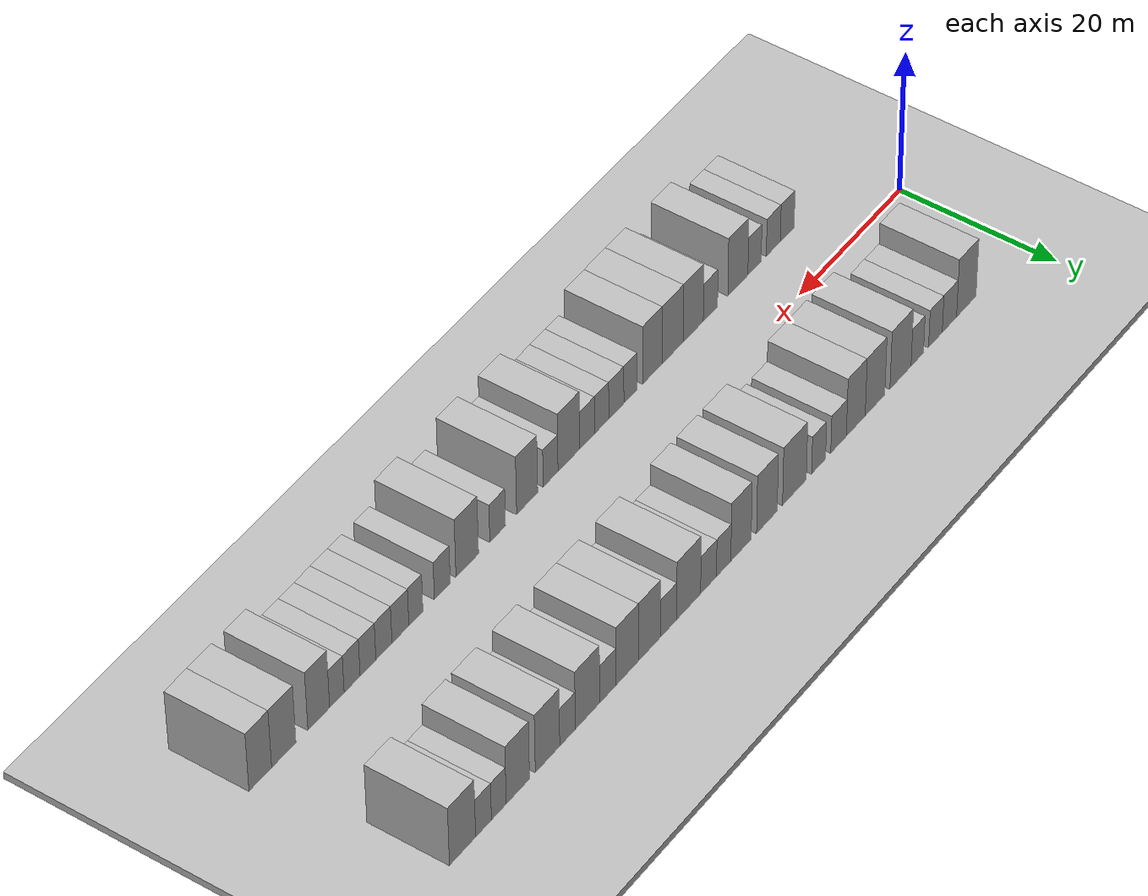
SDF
<sdf version="1.6">
 <world name="default">
  <include><name>ground_plane_1</name><uri>model://HANNAS_ground_plane</uri></include>
  <include>
   <name>ground_plane_2</name>
   <uri>model://HANNAS_ground_plane</uri>
   <pose>100 0 0  0 0 0</pose>
  </include>
  <model name="building_1">
   <static>1</static>
   <pose>11.9520 11.0000 0 0.000000 0.000000 1.570796</pose>
   <link name="link">
    <pose>0 0 4.50 0 0 0</pose>
    <collision name="collision"><geometry><box><size>10.0000 3.9040 9.0000</size></box></geometry></collision>
    <visual name="visual">
     <cast_shadows>0</cast_shadows>
     <geometry><box><size>10.0000 3.9040 9.0000</size></box></geometry>
     <material>
      <script>
       <uri>model://HANNAS_wall/materials/scripts</uri>
       <uri>model://HANNAS_wall/materials/textures</uri>
       <name>vrc/HANNAS_wall</name>
      </script>
     </material>
    </visual>
   </link>
  </model>
  <model name="building_2">
   <static>1</static>
   <pose>15.3373 11.0000 0 0.000000 0.000000 1.570796</pose>
   <link name="link">
    <pose>0 0 3.00 0 0 0</pose>
    <collision name="collision"><geometry><box><size>10.0000 2.8666 6.0000</size></box></geometry></collision>
    <visual name="visual">
     <cast_shadows>0</cast_shadows>
     <geometry><box><size>10.0000 2.8666 6.0000</size></box></geometry>
     <material>
      <script>
       <uri>model://HANNAS_wall/materials/scripts</uri>
       <uri>model://HANNAS_wall/materials/textures</uri>
       <name>vrc/HANNAS_wall</name>
      </script>
     </material>
    </visual>
   </link>
  </model>
  <model name="building_3">
   <static>1</static>
   <pose>18.1321 11.0000 0 0.000000 0.000000 1.570796</pose>
   <link name="link">
    <pose>0 0 3.00 0 0 0</pose>
    <collision name="collision"><geometry><box><size>10.0000 2.7230 6.0000</size></box></geometry></collision>
    <visual name="visual">
     <cast_shadows>0</cast_shadows>
     <geometry><box><size>10.0000 2.7230 6.0000</size></box></geometry>
     <material>
      <script>
       <uri>model://HANNAS_wall/materials/scripts</uri>
       <uri>model://HANNAS_wall/materials/textures</uri>
       <name>vrc/HANNAS_wall</name>
      </script>
     </material>
    </visual>
   </link>
  </model>
  <model name="building_4">
   <static>1</static>
   <pose>21.7241 11.0000 0 0.000000 0.000000 1.570796</pose>
   <link name="link">
    <pose>0 0 3.00 0 0 0</pose>
    <collision name="collision"><geometry><box><size>10.0000 2.4609 6.0000</size></box></geometry></collision>
    <visual name="visual">
     <cast_shadows>0</cast_shadows>
     <geometry><box><size>10.0000 2.4609 6.0000</size></box></geometry>
     <material>
      <script>
       <uri>model://HANNAS_wall/materials/scripts</uri>
       <uri>model://HANNAS_wall/materials/textures</uri>
       <name>vrc/HANNAS_wall</name>
      </script>
     </material>
    </visual>
   </link>
  </model>
  <model name="building_5">
   <static>1</static>
   <pose>25.0302 11.0000 0 0.000000 0.000000 1.570796</pose>
   <link name="link">
    <pose>0 0 4.50 0 0 0</pose>
    <collision name="collision"><geometry><box><size>10.0000 4.1513 9.0000</size></box></geometry></collision>
    <visual name="visual">
     <cast_shadows>0</cast_shadows>
     <geometry><box><size>10.0000 4.1513 9.0000</size></box></geometry>
     <material>
      <script>
       <uri>model://HANNAS_wall/materials/scripts</uri>
       <uri>model://HANNAS_wall/materials/textures</uri>
       <name>vrc/HANNAS_wall</name>
      </script>
     </material>
    </visual>
   </link>
  </model>
  <model name="building_6">
   <static>1</static>
   <pose>30.0133 11.0000 0 0.000000 0.000000 1.570796</pose>
   <link name="link">
    <pose>0 0 4.50 0 0 0</pose>
    <collision name="collision"><geometry><box><size>10.0000 3.8149 9.0000</size></box></geometry></collision>
    <visual name="visual">
     <cast_shadows>0</cast_shadows>
     <geometry><box><size>10.0000 3.8149 9.0000</size></box></geometry>
     <material>
      <script>
       <uri>model://HANNAS_wall/materials/scripts</uri>
       <uri>model://HANNAS_wall/materials/textures</uri>
       <name>vrc/HANNAS_wall</name>
      </script>
     </material>
    </visual>
   </link>
  </model>
  <model name="building_7">
   <static>1</static>
   <pose>33.7494 11.0000 0 0.000000 0.000000 1.570796</pose>
   <link name="link">
    <pose>0 0 4.50 0 0 0</pose>
    <collision name="collision"><geometry><box><size>10.0000 3.6573 9.0000</size></box></geometry></collision>
    <visual name="visual">
     <cast_shadows>0</cast_shadows>
     <geometry><box><size>10.0000 3.6573 9.0000</size></box></geometry>
     <material>
      <script>
       <uri>model://HANNAS_wall/materials/scripts</uri>
       <uri>model://HANNAS_wall/materials/textures</uri>
       <name>vrc/HANNAS_wall</name>
      </script>
     </material>
    </visual>
   </link>
  </model>
  <model name="building_8">
   <static>1</static>
   <pose>37.0728 11.0000 0 0.000000 0.000000 1.570796</pose>
   <link name="link">
    <pose>0 0 3.00 0 0 0</pose>
    <collision name="collision"><geometry><box><size>10.0000 2.9895 6.0000</size></box></geometry></collision>
    <visual name="visual">
     <cast_shadows>0</cast_shadows>
     <geometry><box><size>10.0000 2.9895 6.0000</size></box></geometry>
     <material>
      <script>
       <uri>model://HANNAS_wall/materials/scripts</uri>
       <uri>model://HANNAS_wall/materials/textures</uri>
       <name>vrc/HANNAS_wall</name>
      </script>
     </material>
    </visual>
   </link>
  </model>
  <model name="building_9">
   <static>1</static>
   <pose>40.8985 11.0000 0 0.000000 0.000000 1.570796</pose>
   <link name="link">
    <pose>0 0 3.00 0 0 0</pose>
    <collision name="collision"><geometry><box><size>10.0000 2.6618 6.0000</size></box></geometry></collision>
    <visual name="visual">
     <cast_shadows>0</cast_shadows>
     <geometry><box><size>10.0000 2.6618 6.0000</size></box></geometry>
     <material>
      <script>
       <uri>model://HANNAS_wall/materials/scripts</uri>
       <uri>model://HANNAS_wall/materials/textures</uri>
       <name>vrc/HANNAS_wall</name>
      </script>
     </material>
    </visual>
   </link>
  </model>
  <model name="building_10">
   <static>1</static>
   <pose>45.4776 11.0000 0 0.000000 0.000000 1.570796</pose>
   <link name="link">
    <pose>0 0 4.50 0 0 0</pose>
    <collision name="collision"><geometry><box><size>10.0000 4.4963 9.0000</size></box></geometry></collision>
    <visual name="visual">
     <cast_shadows>0</cast_shadows>
     <geometry><box><size>10.0000 4.4963 9.0000</size></box></geometry>
     <material>
      <script>
       <uri>model://HANNAS_wall/materials/scripts</uri>
       <uri>model://HANNAS_wall/materials/textures</uri>
       <name>vrc/HANNAS_wall</name>
      </script>
     </material>
    </visual>
   </link>
  </model>
  <model name="building_11">
   <static>1</static>
   <pose>50.6622 11.0000 0 0.000000 0.000000 1.570796</pose>
   <link name="link">
    <pose>0 0 4.50 0 0 0</pose>
    <collision name="collision"><geometry><box><size>10.0000 3.8730 9.0000</size></box></geometry></collision>
    <visual name="visual">
     <cast_shadows>0</cast_shadows>
     <geometry><box><size>10.0000 3.8730 9.0000</size></box></geometry>
     <material>
      <script>
       <uri>model://HANNAS_wall/materials/scripts</uri>
       <uri>model://HANNAS_wall/materials/textures</uri>
       <name>vrc/HANNAS_wall</name>
      </script>
     </material>
    </visual>
   </link>
  </model>
  <model name="building_12">
   <static>1</static>
   <pose>55.4799 11.0000 0 0.000000 0.000000 1.570796</pose>
   <link name="link">
    <pose>0 0 4.50 0 0 0</pose>
    <collision name="collision"><geometry><box><size>10.0000 3.7623 9.0000</size></box></geometry></collision>
    <visual name="visual">
     <cast_shadows>0</cast_shadows>
     <geometry><box><size>10.0000 3.7623 9.0000</size></box></geometry>
     <material>
      <script>
       <uri>model://HANNAS_wall/materials/scripts</uri>
       <uri>model://HANNAS_wall/materials/textures</uri>
       <name>vrc/HANNAS_wall</name>
      </script>
     </material>
    </visual>
   </link>
  </model>
  <model name="building_13">
   <static>1</static>
   <pose>58.6857 11.0000 0 0.000000 0.000000 1.570796</pose>
   <link name="link">
    <pose>0 0 3.00 0 0 0</pose>
    <collision name="collision"><geometry><box><size>10.0000 2.6495 6.0000</size></box></geometry></collision>
    <visual name="visual">
     <cast_shadows>0</cast_shadows>
     <geometry><box><size>10.0000 2.6495 6.0000</size></box></geometry>
     <material>
      <script>
       <uri>model://HANNAS_wall/materials/scripts</uri>
       <uri>model://HANNAS_wall/materials/textures</uri>
       <name>vrc/HANNAS_wall</name>
      </script>
     </material>
    </visual>
   </link>
  </model>
  <model name="building_14">
   <static>1</static>
   <pose>61.4664 11.0000 0 0.000000 0.000000 1.570796</pose>
   <link name="link">
    <pose>0 0 3.00 0 0 0</pose>
    <collision name="collision"><geometry><box><size>10.0000 2.9119 6.0000</size></box></geometry></collision>
    <visual name="visual">
     <cast_shadows>0</cast_shadows>
     <geometry><box><size>10.0000 2.9119 6.0000</size></box></geometry>
     <material>
      <script>
       <uri>model://HANNAS_wall/materials/scripts</uri>
       <uri>model://HANNAS_wall/materials/textures</uri>
       <name>vrc/HANNAS_wall</name>
      </script>
     </material>
    </visual>
   </link>
  </model>
  <model name="building_15">
   <static>1</static>
   <pose>65.0920 11.0000 0 0.000000 0.000000 1.570796</pose>
   <link name="link">
    <pose>0 0 4.50 0 0 0</pose>
    <collision name="collision"><geometry><box><size>10.0000 4.3392 9.0000</size></box></geometry></collision>
    <visual name="visual">
     <cast_shadows>0</cast_shadows>
     <geometry><box><size>10.0000 4.3392 9.0000</size></box></geometry>
     <material>
      <script>
       <uri>model://HANNAS_wall/materials/scripts</uri>
       <uri>model://HANNAS_wall/materials/textures</uri>
       <name>vrc/HANNAS_wall</name>
      </script>
     </material>
    </visual>
   </link>
  </model>
  <model name="building_16">
   <static>1</static>
   <pose>68.7503 11.0000 0 0.000000 0.000000 1.570796</pose>
   <link name="link">
    <pose>0 0 3.00 0 0 0</pose>
    <collision name="collision"><geometry><box><size>10.0000 2.9774 6.0000</size></box></geometry></collision>
    <visual name="visual">
     <cast_shadows>0</cast_shadows>
     <geometry><box><size>10.0000 2.9774 6.0000</size></box></geometry>
     <material>
      <script>
       <uri>model://HANNAS_wall/materials/scripts</uri>
       <uri>model://HANNAS_wall/materials/textures</uri>
       <name>vrc/HANNAS_wall</name>
      </script>
     </material>
    </visual>
   </link>
  </model>
  <model name="building_17">
   <static>1</static>
   <pose>72.1875 11.0000 0 0.000000 0.000000 1.570796</pose>
   <link name="link">
    <pose>0 0 4.50 0 0 0</pose>
    <collision name="collision"><geometry><box><size>10.0000 3.8970 9.0000</size></box></geometry></collision>
    <visual name="visual">
     <cast_shadows>0</cast_shadows>
     <geometry><box><size>10.0000 3.8970 9.0000</size></box></geometry>
     <material>
      <script>
       <uri>model://HANNAS_wall/materials/scripts</uri>
       <uri>model://HANNAS_wall/materials/textures</uri>
       <name>vrc/HANNAS_wall</name>
      </script>
     </material>
    </visual>
   </link>
  </model>
  <model name="building_18">
   <static>1</static>
   <pose>76.1417 11.0000 0 0.000000 0.000000 1.570796</pose>
   <link name="link">
    <pose>0 0 4.50 0 0 0</pose>
    <collision name="collision"><geometry><box><size>10.0000 4.0115 9.0000</size></box></geometry></collision>
    <visual name="visual">
     <cast_shadows>0</cast_shadows>
     <geometry><box><size>10.0000 4.0115 9.0000</size></box></geometry>
     <material>
      <script>
       <uri>model://HANNAS_wall/materials/scripts</uri>
       <uri>model://HANNAS_wall/materials/textures</uri>
       <name>vrc/HANNAS_wall</name>
      </script>
     </material>
    </visual>
   </link>
  </model>
  <model name="building_19">
   <static>1</static>
   <pose>79.6053 11.0000 0 0.000000 0.000000 1.570796</pose>
   <link name="link">
    <pose>0 0 3.00 0 0 0</pose>
    <collision name="collision"><geometry><box><size>10.0000 2.9156 6.0000</size></box></geometry></collision>
    <visual name="visual">
     <cast_shadows>0</cast_shadows>
     <geometry><box><size>10.0000 2.9156 6.0000</size></box></geometry>
     <material>
      <script>
       <uri>model://HANNAS_wall/materials/scripts</uri>
       <uri>model://HANNAS_wall/materials/textures</uri>
       <name>vrc/HANNAS_wall</name>
      </script>
     </material>
    </visual>
   </link>
  </model>
  <model name="building_20">
   <static>1</static>
   <pose>83.2097 11.0000 0 0.000000 0.000000 1.570796</pose>
   <link name="link">
    <pose>0 0 4.50 0 0 0</pose>
    <collision name="collision"><geometry><box><size>10.0000 4.2931 9.0000</size></box></geometry></collision>
    <visual name="visual">
     <cast_shadows>0</cast_shadows>
     <geometry><box><size>10.0000 4.2931 9.0000</size></box></geometry>
     <material>
      <script>
       <uri>model://HANNAS_wall/materials/scripts</uri>
       <uri>model://HANNAS_wall/materials/textures</uri>
       <name>vrc/HANNAS_wall</name>
      </script>
     </material>
    </visual>
   </link>
  </model>
  <model name="building_21">
   <static>1</static>
   <pose>86.7155 11.0000 0 0.000000 0.000000 1.570796</pose>
   <link name="link">
    <pose>0 0 3.00 0 0 0</pose>
    <collision name="collision"><geometry><box><size>10.0000 2.7185 6.0000</size></box></geometry></collision>
    <visual name="visual">
     <cast_shadows>0</cast_shadows>
     <geometry><box><size>10.0000 2.7185 6.0000</size></box></geometry>
     <material>
      <script>
       <uri>model://HANNAS_wall/materials/scripts</uri>
       <uri>model://HANNAS_wall/materials/textures</uri>
       <name>vrc/HANNAS_wall</name>
      </script>
     </material>
    </visual>
   </link>
  </model>
  <model name="building_22">
   <static>1</static>
   <pose>90.1966 11.0000 0 0.000000 0.000000 1.570796</pose>
   <link name="link">
    <pose>0 0 4.50 0 0 0</pose>
    <collision name="collision"><geometry><box><size>10.0000 4.2436 9.0000</size></box></geometry></collision>
    <visual name="visual">
     <cast_shadows>0</cast_shadows>
     <geometry><box><size>10.0000 4.2436 9.0000</size></box></geometry>
     <material>
      <script>
       <uri>model://HANNAS_wall/materials/scripts</uri>
       <uri>model://HANNAS_wall/materials/textures</uri>
       <name>vrc/HANNAS_wall</name>
      </script>
     </material>
    </visual>
   </link>
  </model>
  <model name="building_23">
   <static>1</static>
   <pose>95.3163 11.0000 0 0.000000 0.000000 1.570796</pose>
   <link name="link">
    <pose>0 0 4.50 0 0 0</pose>
    <collision name="collision"><geometry><box><size>10.0000 3.9959 9.0000</size></box></geometry></collision>
    <visual name="visual">
     <cast_shadows>0</cast_shadows>
     <geometry><box><size>10.0000 3.9959 9.0000</size></box></geometry>
     <material>
      <script>
       <uri>model://HANNAS_wall/materials/scripts</uri>
       <uri>model://HANNAS_wall/materials/textures</uri>
       <name>vrc/HANNAS_wall</name>
      </script>
     </material>
    </visual>
   </link>
  </model>
  <model name="building_24">
   <static>1</static>
   <pose>98.5761 11.0000 0 0.000000 0.000000 1.570796</pose>
   <link name="link">
    <pose>0 0 3.00 0 0 0</pose>
    <collision name="collision"><geometry><box><size>10.0000 2.5237 6.0000</size></box></geometry></collision>
    <visual name="visual">
     <cast_shadows>0</cast_shadows>
     <geometry><box><size>10.0000 2.5237 6.0000</size></box></geometry>
     <material>
      <script>
       <uri>model://HANNAS_wall/materials/scripts</uri>
       <uri>model://HANNAS_wall/materials/textures</uri>
       <name>vrc/HANNAS_wall</name>
      </script>
     </material>
    </visual>
   </link>
  </model>
  <model name="building_25">
   <static>1</static>
   <pose>101.1797 11.0000 0 0.000000 0.000000 1.570796</pose>
   <link name="link">
    <pose>0 0 3.00 0 0 0</pose>
    <collision name="collision"><geometry><box><size>10.0000 2.6833 6.0000</size></box></geometry></collision>
    <visual name="visual">
     <cast_shadows>0</cast_shadows>
     <geometry><box><size>10.0000 2.6833 6.0000</size></box></geometry>
     <material>
      <script>
       <uri>model://HANNAS_wall/materials/scripts</uri>
       <uri>model://HANNAS_wall/materials/textures</uri>
       <name>vrc/HANNAS_wall</name>
      </script>
     </material>
    </visual>
   </link>
  </model>
  <model name="building_26">
   <static>1</static>
   <pose>104.7301 11.0000 0 0.000000 0.000000 1.570796</pose>
   <link name="link">
    <pose>0 0 4.50 0 0 0</pose>
    <collision name="collision"><geometry><box><size>10.0000 4.4175 9.0000</size></box></geometry></collision>
    <visual name="visual">
     <cast_shadows>0</cast_shadows>
     <geometry><box><size>10.0000 4.4175 9.0000</size></box></geometry>
     <material>
      <script>
       <uri>model://HANNAS_wall/materials/scripts</uri>
       <uri>model://HANNAS_wall/materials/textures</uri>
       <name>vrc/HANNAS_wall</name>
      </script>
     </material>
    </visual>
   </link>
  </model>
  <model name="building_54">
   <static>1</static>
   <pose>13.3574 -11.0000 0 0.000000 0.000000 1.570796</pose>
   <link name="link">
    <pose>0 0 3.00 0 0 0</pose>
    <collision name="collision"><geometry><box><size>10.0000 2.7147 6.0000</size></box></geometry></collision>
    <visual name="visual">
     <cast_shadows>0</cast_shadows>
     <geometry><box><size>10.0000 2.7147 6.0000</size></box></geometry>
     <material>
      <script>
       <uri>model://HANNAS_wall/materials/scripts</uri>
       <uri>model://HANNAS_wall/materials/textures</uri>
       <name>vrc/HANNAS_wall</name>
      </script>
     </material>
    </visual>
   </link>
  </model>
  <model name="building_55">
   <static>1</static>
   <pose>16.0960 -11.0000 0 0.000000 0.000000 1.570796</pose>
   <link name="link">
    <pose>0 0 3.00 0 0 0</pose>
    <collision name="collision"><geometry><box><size>10.0000 2.7626 6.0000</size></box></geometry></collision>
    <visual name="visual">
     <cast_shadows>0</cast_shadows>
     <geometry><box><size>10.0000 2.7626 6.0000</size></box></geometry>
     <material>
      <script>
       <uri>model://HANNAS_wall/materials/scripts</uri>
       <uri>model://HANNAS_wall/materials/textures</uri>
       <name>vrc/HANNAS_wall</name>
      </script>
     </material>
    </visual>
   </link>
  </model>
  <model name="building_56">
   <static>1</static>
   <pose>19.7755 -11.0000 0 0.000000 0.000000 1.570796</pose>
   <link name="link">
    <pose>0 0 3.00 0 0 0</pose>
    <collision name="collision"><geometry><box><size>10.0000 2.5964 6.0000</size></box></geometry></collision>
    <visual name="visual">
     <cast_shadows>0</cast_shadows>
     <geometry><box><size>10.0000 2.5964 6.0000</size></box></geometry>
     <material>
      <script>
       <uri>model://HANNAS_wall/materials/scripts</uri>
       <uri>model://HANNAS_wall/materials/textures</uri>
       <name>vrc/HANNAS_wall</name>
      </script>
     </material>
    </visual>
   </link>
  </model>
  <model name="building_57">
   <static>1</static>
   <pose>23.0078 -11.0000 0 0.000000 0.000000 1.570796</pose>
   <link name="link">
    <pose>0 0 4.50 0 0 0</pose>
    <collision name="collision"><geometry><box><size>10.0000 3.8683 9.0000</size></box></geometry></collision>
    <visual name="visual">
     <cast_shadows>0</cast_shadows>
     <geometry><box><size>10.0000 3.8683 9.0000</size></box></geometry>
     <material>
      <script>
       <uri>model://HANNAS_wall/materials/scripts</uri>
       <uri>model://HANNAS_wall/materials/textures</uri>
       <name>vrc/HANNAS_wall</name>
      </script>
     </material>
    </visual>
   </link>
  </model>
  <model name="building_58">
   <static>1</static>
   <pose>28.3146 -11.0000 0 0.000000 0.000000 1.570796</pose>
   <link name="link">
    <pose>0 0 3.00 0 0 0</pose>
    <collision name="collision"><geometry><box><size>10.0000 2.7453 6.0000</size></box></geometry></collision>
    <visual name="visual">
     <cast_shadows>0</cast_shadows>
     <geometry><box><size>10.0000 2.7453 6.0000</size></box></geometry>
     <material>
      <script>
       <uri>model://HANNAS_wall/materials/scripts</uri>
       <uri>model://HANNAS_wall/materials/textures</uri>
       <name>vrc/HANNAS_wall</name>
      </script>
     </material>
    </visual>
   </link>
  </model>
  <model name="building_59">
   <static>1</static>
   <pose>31.5759 -11.0000 0 0.000000 0.000000 1.570796</pose>
   <link name="link">
    <pose>0 0 4.50 0 0 0</pose>
    <collision name="collision"><geometry><box><size>10.0000 3.7773 9.0000</size></box></geometry></collision>
    <visual name="visual">
     <cast_shadows>0</cast_shadows>
     <geometry><box><size>10.0000 3.7773 9.0000</size></box></geometry>
     <material>
      <script>
       <uri>model://HANNAS_wall/materials/scripts</uri>
       <uri>model://HANNAS_wall/materials/textures</uri>
       <name>vrc/HANNAS_wall</name>
      </script>
     </material>
    </visual>
   </link>
  </model>
  <model name="building_60">
   <static>1</static>
   <pose>35.4759 -11.0000 0 0.000000 0.000000 1.570796</pose>
   <link name="link">
    <pose>0 0 4.50 0 0 0</pose>
    <collision name="collision"><geometry><box><size>10.0000 4.0227 9.0000</size></box></geometry></collision>
    <visual name="visual">
     <cast_shadows>0</cast_shadows>
     <geometry><box><size>10.0000 4.0227 9.0000</size></box></geometry>
     <material>
      <script>
       <uri>model://HANNAS_wall/materials/scripts</uri>
       <uri>model://HANNAS_wall/materials/textures</uri>
       <name>vrc/HANNAS_wall</name>
      </script>
     </material>
    </visual>
   </link>
  </model>
  <model name="building_61">
   <static>1</static>
   <pose>39.3312 -11.0000 0 0.000000 0.000000 1.570796</pose>
   <link name="link">
    <pose>0 0 4.50 0 0 0</pose>
    <collision name="collision"><geometry><box><size>10.0000 3.6879 9.0000</size></box></geometry></collision>
    <visual name="visual">
     <cast_shadows>0</cast_shadows>
     <geometry><box><size>10.0000 3.6879 9.0000</size></box></geometry>
     <material>
      <script>
       <uri>model://HANNAS_wall/materials/scripts</uri>
       <uri>model://HANNAS_wall/materials/textures</uri>
       <name>vrc/HANNAS_wall</name>
      </script>
     </material>
    </visual>
   </link>
  </model>
  <model name="building_62">
   <static>1</static>
   <pose>43.4285 -11.0000 0 0.000000 0.000000 1.570796</pose>
   <link name="link">
    <pose>0 0 3.00 0 0 0</pose>
    <collision name="collision"><geometry><box><size>10.0000 2.5066 6.0000</size></box></geometry></collision>
    <visual name="visual">
     <cast_shadows>0</cast_shadows>
     <geometry><box><size>10.0000 2.5066 6.0000</size></box></geometry>
     <material>
      <script>
       <uri>model://HANNAS_wall/materials/scripts</uri>
       <uri>model://HANNAS_wall/materials/textures</uri>
       <name>vrc/HANNAS_wall</name>
      </script>
     </material>
    </visual>
   </link>
  </model>
  <model name="building_63">
   <static>1</static>
   <pose>46.0824 -11.0000 0 0.000000 0.000000 1.570796</pose>
   <link name="link">
    <pose>0 0 3.00 0 0 0</pose>
    <collision name="collision"><geometry><box><size>10.0000 2.8013 6.0000</size></box></geometry></collision>
    <visual name="visual">
     <cast_shadows>0</cast_shadows>
     <geometry><box><size>10.0000 2.8013 6.0000</size></box></geometry>
     <material>
      <script>
       <uri>model://HANNAS_wall/materials/scripts</uri>
       <uri>model://HANNAS_wall/materials/textures</uri>
       <name>vrc/HANNAS_wall</name>
      </script>
     </material>
    </visual>
   </link>
  </model>
  <model name="building_64">
   <static>1</static>
   <pose>48.7903 -11.0000 0 0.000000 0.000000 1.570796</pose>
   <link name="link">
    <pose>0 0 3.00 0 0 0</pose>
    <collision name="collision"><geometry><box><size>10.0000 2.6145 6.0000</size></box></geometry></collision>
    <visual name="visual">
     <cast_shadows>0</cast_shadows>
     <geometry><box><size>10.0000 2.6145 6.0000</size></box></geometry>
     <material>
      <script>
       <uri>model://HANNAS_wall/materials/scripts</uri>
       <uri>model://HANNAS_wall/materials/textures</uri>
       <name>vrc/HANNAS_wall</name>
      </script>
     </material>
    </visual>
   </link>
  </model>
  <model name="building_65">
   <static>1</static>
   <pose>51.4650 -11.0000 0 0.000000 0.000000 1.570796</pose>
   <link name="link">
    <pose>0 0 3.00 0 0 0</pose>
    <collision name="collision"><geometry><box><size>10.0000 2.7348 6.0000</size></box></geometry></collision>
    <visual name="visual">
     <cast_shadows>0</cast_shadows>
     <geometry><box><size>10.0000 2.7348 6.0000</size></box></geometry>
     <material>
      <script>
       <uri>model://HANNAS_wall/materials/scripts</uri>
       <uri>model://HANNAS_wall/materials/textures</uri>
       <name>vrc/HANNAS_wall</name>
      </script>
     </material>
    </visual>
   </link>
  </model>
  <model name="building_66">
   <static>1</static>
   <pose>54.8225 -11.0000 0 0.000000 0.000000 1.570796</pose>
   <link name="link">
    <pose>0 0 4.50 0 0 0</pose>
    <collision name="collision"><geometry><box><size>10.0000 3.9803 9.0000</size></box></geometry></collision>
    <visual name="visual">
     <cast_shadows>0</cast_shadows>
     <geometry><box><size>10.0000 3.9803 9.0000</size></box></geometry>
     <material>
      <script>
       <uri>model://HANNAS_wall/materials/scripts</uri>
       <uri>model://HANNAS_wall/materials/textures</uri>
       <name>vrc/HANNAS_wall</name>
      </script>
     </material>
    </visual>
   </link>
  </model>
  <model name="building_67">
   <static>1</static>
   <pose>58.1551 -11.0000 0 0.000000 0.000000 1.570796</pose>
   <link name="link">
    <pose>0 0 3.00 0 0 0</pose>
    <collision name="collision"><geometry><box><size>10.0000 2.6848 6.0000</size></box></geometry></collision>
    <visual name="visual">
     <cast_shadows>0</cast_shadows>
     <geometry><box><size>10.0000 2.6848 6.0000</size></box></geometry>
     <material>
      <script>
       <uri>model://HANNAS_wall/materials/scripts</uri>
       <uri>model://HANNAS_wall/materials/textures</uri>
       <name>vrc/HANNAS_wall</name>
      </script>
     </material>
    </visual>
   </link>
  </model>
  <model name="building_68">
   <static>1</static>
   <pose>62.3948 -11.0000 0 0.000000 0.000000 1.570796</pose>
   <link name="link">
    <pose>0 0 4.50 0 0 0</pose>
    <collision name="collision"><geometry><box><size>10.0000 3.7947 9.0000</size></box></geometry></collision>
    <visual name="visual">
     <cast_shadows>0</cast_shadows>
     <geometry><box><size>10.0000 3.7947 9.0000</size></box></geometry>
     <material>
      <script>
       <uri>model://HANNAS_wall/materials/scripts</uri>
       <uri>model://HANNAS_wall/materials/textures</uri>
       <name>vrc/HANNAS_wall</name>
      </script>
     </material>
    </visual>
   </link>
  </model>
  <model name="building_69">
   <static>1</static>
   <pose>67.6923 -11.0000 0 0.000000 0.000000 1.570796</pose>
   <link name="link">
    <pose>0 0 3.00 0 0 0</pose>
    <collision name="collision"><geometry><box><size>10.0000 2.8003 6.0000</size></box></geometry></collision>
    <visual name="visual">
     <cast_shadows>0</cast_shadows>
     <geometry><box><size>10.0000 2.8003 6.0000</size></box></geometry>
     <material>
      <script>
       <uri>model://HANNAS_wall/materials/scripts</uri>
       <uri>model://HANNAS_wall/materials/textures</uri>
       <name>vrc/HANNAS_wall</name>
      </script>
     </material>
    </visual>
   </link>
  </model>
  <model name="building_70">
   <static>1</static>
   <pose>73.0861 -11.0000 0 0.000000 0.000000 1.570796</pose>
   <link name="link">
    <pose>0 0 4.50 0 0 0</pose>
    <collision name="collision"><geometry><box><size>10.0000 3.9872 9.0000</size></box></geometry></collision>
    <visual name="visual">
     <cast_shadows>0</cast_shadows>
     <geometry><box><size>10.0000 3.9872 9.0000</size></box></geometry>
     <material>
      <script>
       <uri>model://HANNAS_wall/materials/scripts</uri>
       <uri>model://HANNAS_wall/materials/textures</uri>
       <name>vrc/HANNAS_wall</name>
      </script>
     </material>
    </visual>
   </link>
  </model>
  <model name="building_71">
   <static>1</static>
   <pose>77.4678 -11.0000 0 0.000000 0.000000 1.570796</pose>
   <link name="link">
    <pose>0 0 3.00 0 0 0</pose>
    <collision name="collision"><geometry><box><size>10.0000 2.7763 6.0000</size></box></geometry></collision>
    <visual name="visual">
     <cast_shadows>0</cast_shadows>
     <geometry><box><size>10.0000 2.7763 6.0000</size></box></geometry>
     <material>
      <script>
       <uri>model://HANNAS_wall/materials/scripts</uri>
       <uri>model://HANNAS_wall/materials/textures</uri>
       <name>vrc/HANNAS_wall</name>
      </script>
     </material>
    </visual>
   </link>
  </model>
  <model name="building_72">
   <static>1</static>
   <pose>82.0760 -11.0000 0 0.000000 0.000000 1.570796</pose>
   <link name="link">
    <pose>0 0 3.00 0 0 0</pose>
    <collision name="collision"><geometry><box><size>10.0000 2.4400 6.0000</size></box></geometry></collision>
    <visual name="visual">
     <cast_shadows>0</cast_shadows>
     <geometry><box><size>10.0000 2.4400 6.0000</size></box></geometry>
     <material>
      <script>
       <uri>model://HANNAS_wall/materials/scripts</uri>
       <uri>model://HANNAS_wall/materials/textures</uri>
       <name>vrc/HANNAS_wall</name>
      </script>
     </material>
    </visual>
   </link>
  </model>
  <model name="building_73">
   <static>1</static>
   <pose>84.7548 -11.0000 0 0.000000 0.000000 1.570796</pose>
   <link name="link">
    <pose>0 0 3.00 0 0 0</pose>
    <collision name="collision"><geometry><box><size>10.0000 2.9176 6.0000</size></box></geometry></collision>
    <visual name="visual">
     <cast_shadows>0</cast_shadows>
     <geometry><box><size>10.0000 2.9176 6.0000</size></box></geometry>
     <material>
      <script>
       <uri>model://HANNAS_wall/materials/scripts</uri>
       <uri>model://HANNAS_wall/materials/textures</uri>
       <name>vrc/HANNAS_wall</name>
      </script>
     </material>
    </visual>
   </link>
  </model>
  <model name="building_74">
   <static>1</static>
   <pose>87.5928 -11.0000 0 0.000000 0.000000 1.570796</pose>
   <link name="link">
    <pose>0 0 3.00 0 0 0</pose>
    <collision name="collision"><geometry><box><size>10.0000 2.7585 6.0000</size></box></geometry></collision>
    <visual name="visual">
     <cast_shadows>0</cast_shadows>
     <geometry><box><size>10.0000 2.7585 6.0000</size></box></geometry>
     <material>
      <script>
       <uri>model://HANNAS_wall/materials/scripts</uri>
       <uri>model://HANNAS_wall/materials/textures</uri>
       <name>vrc/HANNAS_wall</name>
      </script>
     </material>
    </visual>
   </link>
  </model>
  <model name="building_75">
   <static>1</static>
   <pose>90.3208 -11.0000 0 0.000000 0.000000 1.570796</pose>
   <link name="link">
    <pose>0 0 3.00 0 0 0</pose>
    <collision name="collision"><geometry><box><size>10.0000 2.6973 6.0000</size></box></geometry></collision>
    <visual name="visual">
     <cast_shadows>0</cast_shadows>
     <geometry><box><size>10.0000 2.6973 6.0000</size></box></geometry>
     <material>
      <script>
       <uri>model://HANNAS_wall/materials/scripts</uri>
       <uri>model://HANNAS_wall/materials/textures</uri>
       <name>vrc/HANNAS_wall</name>
      </script>
     </material>
    </visual>
   </link>
  </model>
  <model name="building_76">
   <static>1</static>
   <pose>93.0268 -11.0000 0 0.000000 0.000000 1.570796</pose>
   <link name="link">
    <pose>0 0 3.00 0 0 0</pose>
    <collision name="collision"><geometry><box><size>10.0000 2.7148 6.0000</size></box></geometry></collision>
    <visual name="visual">
     <cast_shadows>0</cast_shadows>
     <geometry><box><size>10.0000 2.7148 6.0000</size></box></geometry>
     <material>
      <script>
       <uri>model://HANNAS_wall/materials/scripts</uri>
       <uri>model://HANNAS_wall/materials/textures</uri>
       <name>vrc/HANNAS_wall</name>
      </script>
     </material>
    </visual>
   </link>
  </model>
  <model name="building_77">
   <static>1</static>
   <pose>95.6089 -11.0000 0 0.000000 0.000000 1.570796</pose>
   <link name="link">
    <pose>0 0 3.00 0 0 0</pose>
    <collision name="collision"><geometry><box><size>10.0000 2.4494 6.0000</size></box></geometry></collision>
    <visual name="visual">
     <cast_shadows>0</cast_shadows>
     <geometry><box><size>10.0000 2.4494 6.0000</size></box></geometry>
     <material>
      <script>
       <uri>model://HANNAS_wall/materials/scripts</uri>
       <uri>model://HANNAS_wall/materials/textures</uri>
       <name>vrc/HANNAS_wall</name>
      </script>
     </material>
    </visual>
   </link>
  </model>
  <model name="building_78">
   <static>1</static>
   <pose>98.6635 -11.0000 0 0.000000 0.000000 1.570796</pose>
   <link name="link">
    <pose>0 0 4.50 0 0 0</pose>
    <collision name="collision"><geometry><box><size>10.0000 3.6598 9.0000</size></box></geometry></collision>
    <visual name="visual">
     <cast_shadows>0</cast_shadows>
     <geometry><box><size>10.0000 3.6598 9.0000</size></box></geometry>
     <material>
      <script>
       <uri>model://HANNAS_wall/materials/scripts</uri>
       <uri>model://HANNAS_wall/materials/textures</uri>
       <name>vrc/HANNAS_wall</name>
      </script>
     </material>
    </visual>
   </link>
  </model>
  <model name="building_79">
   <static>1</static>
   <pose>104.5097 -11.0000 0 0.000000 0.000000 1.570796</pose>
   <link name="link">
    <pose>0 0 4.50 0 0 0</pose>
    <collision name="collision"><geometry><box><size>10.0000 4.0324 9.0000</size></box></geometry></collision>
    <visual name="visual">
     <cast_shadows>0</cast_shadows>
     <geometry><box><size>10.0000 4.0324 9.0000</size></box></geometry>
     <material>
      <script>
       <uri>model://HANNAS_wall/materials/scripts</uri>
       <uri>model://HANNAS_wall/materials/textures</uri>
       <name>vrc/HANNAS_wall</name>
      </script>
     </material>
    </visual>
   </link>
  </model>
  <model name="building_80">
   <static>1</static>
   <pose>108.3980 -11.0000 0 0.000000 0.000000 1.570796</pose>
   <link name="link">
    <pose>0 0 4.50 0 0 0</pose>
    <collision name="collision"><geometry><box><size>10.0000 3.7443 9.0000</size></box></geometry></collision>
    <visual name="visual">
     <cast_shadows>0</cast_shadows>
     <geometry><box><size>10.0000 3.7443 9.0000</size></box></geometry>
     <material>
      <script>
       <uri>model://HANNAS_wall/materials/scripts</uri>
       <uri>model://HANNAS_wall/materials/textures</uri>
       <name>vrc/HANNAS_wall</name>
      </script>
     </material>
    </visual>
   </link>
  </model>
 </world>
</sdf>
